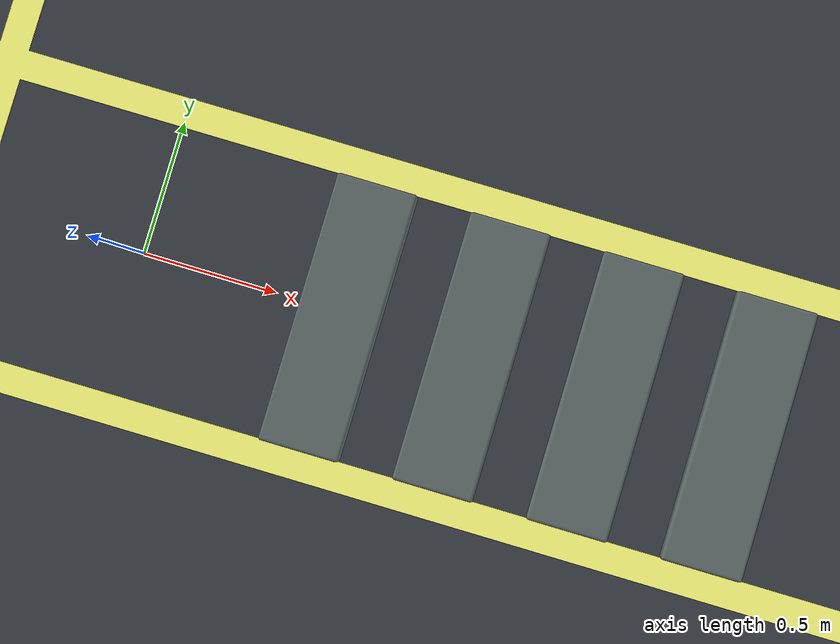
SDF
<?xml version="1.0" ?>
<sdf version="1.5">
    <world name="earth">

        <physics type="ode">
            <max_step_size>0.001</max_step_size>
            <real_time_factor>1</real_time_factor>
            <real_time_update_rate>1000</real_time_update_rate>
            <gravity>0 0 -9.81</gravity>
            <ode>
                <solver>
                <type>quick</type>
                <min_step_size>0.0001</min_step_size>
                <iters>50</iters>
                <sor>1.3</sor>
                </solver>
                <constraints>
                <cfm>0.0</cfm>
                <erp>0.2</erp>
                </constraints>
            </ode>
        </physics>

        <scene>

        </scene>

        <!-- A global light source -->
        <include>
            <uri>model://sun</uri>
        </include>

		<!-- 地板 -->
		<model name="ground_plane">

			<static>true</static>
			<link name="link">
				<collision name="collision">
					<geometry>
					<plane>
							<normal>0 0 1</normal>
							<size>100 100</size>
					</plane>
					</geometry>
				<surface>
					<friction>
						<ode>
						<mu>100</mu>
						<mu2>50</mu2>
						</ode>
					</friction>
				</surface>
				</collision>
				<visual name="visual">
					<cast_shadows>false</cast_shadows>
					<geometry>
					<plane>
						<normal>0 0 1</normal>
						<size>100 100</size>
					</plane>
					</geometry>
					<material>
						<ambient>0.22 0.24 0.26 1</ambient>
							<diffuse>0.22 0.24 0.26 1</diffuse>
					</material>
				</visual>
			</link>
		</model>

		<!-- 跑道 -->
        <model name='race'>
           	<pose>1.5 5.87 1.18 0 0 -1.57</pose>
      	   	<static>true</static>

			<!-- 从开始到弯道结束的黄色边界 -->
           	<link name='1area_border_00'>
           	<pose>0 0 0 0 0 0</pose>
        	<visual name="1area_border_visual">
          		<geometry>
          			<mesh>
              			   <uri>/home/cyberdog_sim/src/cyberdog_simulator/cyberdog_gazebo/model/race2026_meshes/1_border.stl</uri>
              			   <scale>0.01 0.01 0.01</scale>
            			</mesh>
          		</geometry>
          		<material>
        			<ambient>1 1 0.5 1</ambient>
        			<diffuse>1 1 0.5 1</diffuse>
      			</material>
                </visual>
           	</link>

		    <!-- 石板路 -->
           	<link name='1area_rockroad'>
           	<collision name="1area_rockroad_collision">
                    <geometry>
                    	<mesh>
              		<uri>/home/cyberdog_sim/src/cyberdog_simulator/cyberdog_gazebo/model/race2026_meshes/1_rockroad.stl</uri>
              		<scale>0.01 0.01 0.01</scale>
            		</mesh>
                    </geometry>
                </collision>
        	<visual name="1area_rockroad_visual">
          		<geometry>
          			<mesh>
						<uri>/home/cyberdog_sim/src/cyberdog_simulator/cyberdog_gazebo/model/race2026_meshes/1_rockroad.stl</uri>
						<scale>0.01 0.01 0.01</scale>
					</mesh>
          		</geometry>
          		<material>
        			<ambient>0.37 0.41 0.41 1</ambient>
        			<diffuse>0.37 0.41 0.41 1</diffuse>
      			</material>
                </visual>
           </link>

     	</model>

    </world>
</sdf>
